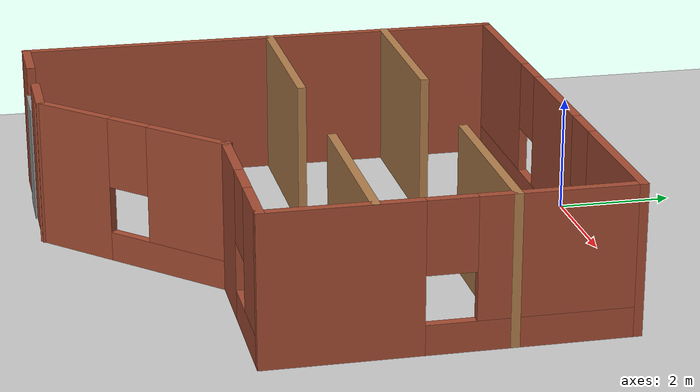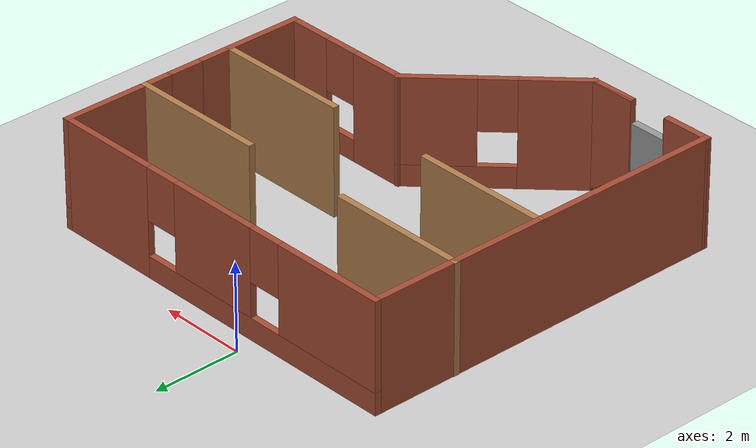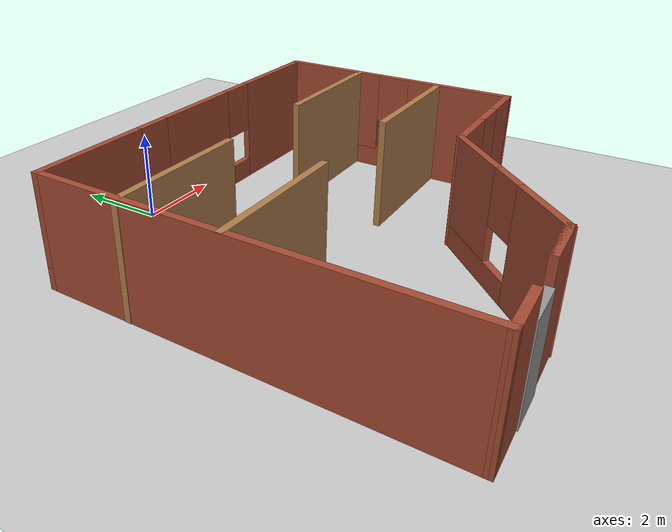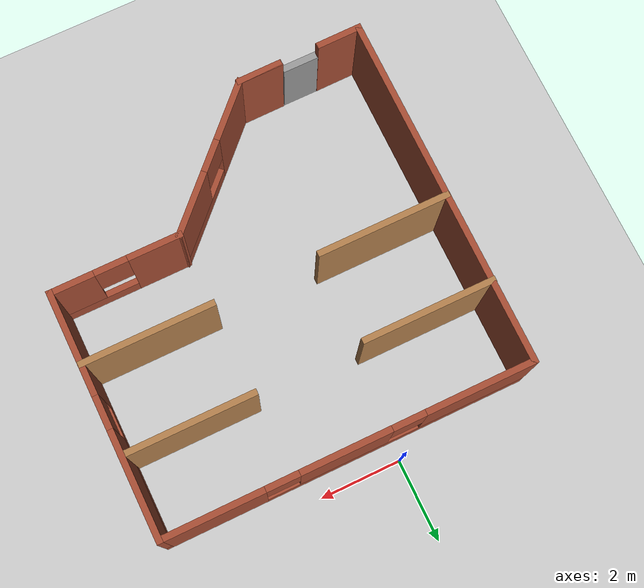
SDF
<sdf version="1.7">
 <world name="default">
  <light name="sun" type="directional">
   <pose>0 0 10 0 -0 0</pose>
   <diffuse>0.8 0.8 0.8 1</diffuse>
   <specular>0.2 0.2 0.2 1</specular>
   <attenuation>
    <range>1000</range>
    <constant>0.9</constant>
    <linear>0.01</linear>
    <quadratic>0.001</quadratic>
   </attenuation>
   <direction>-0.5 0.1 -0.9</direction>
   <spot><inner_angle>0</inner_angle><outer_angle>0</outer_angle><falloff>0</falloff></spot>
  </light>
  <model name="ground_plane">
   <static>1</static>
   <link name="link">
    <collision name="collision">
     <geometry><plane><normal>0 0 1</normal><size>100 100</size></plane></geometry>
     <surface>
      <contact><collide_bitmask>65535</collide_bitmask></contact>
      <friction><ode><mu>100</mu><mu2>50</mu2></ode></friction>
     </surface>
    </collision>
    <visual name="visual">
     <cast_shadows>0</cast_shadows>
     <geometry><plane><normal>0 0 1</normal><size>100 100</size></plane></geometry>
     <material>
      <script><uri>file://media/materials/scripts/gazebo.material</uri><name>Gazebo/Grey</name></script>
     </material>
    </visual>
   </link>
  </model>
  <gravity>0 0 -9.8</gravity>
  <magnetic_field>6e-06 2.3e-05 -4.2e-05</magnetic_field>
  <atmosphere type="adiabatic"/>
  <physics type="ode">
   <max_step_size>0.001</max_step_size>
   <real_time_factor>1</real_time_factor>
   <real_time_update_rate>1000</real_time_update_rate>
  </physics>
  <scene><ambient>0.4 0.4 0.4 1</ambient><background>0.7 0.7 0.7 1</background><shadows>1</shadows></scene>
  <audio><device>default</device></audio>
  <spherical_coordinates>
   <surface_model>EARTH_WGS84</surface_model>
   <latitude_deg>0</latitude_deg>
   <longitude_deg>0</longitude_deg>
   <elevation>0</elevation>
   <heading_deg>0</heading_deg>
  </spherical_coordinates>
  <model name="BuildingSketch1">
   <pose>1.12242 -4.60803 0 0 -0 0</pose>
   <link name="Wall_0">
    <pose>-0.031241 -3.14079 0 0 -0 0.785398</pose>
    <visual name="Wall_0_Visual_0">
     <pose>-1.21498 0 1.25 0 -0 0</pose>
     <geometry><box><size>1.57005 0.15 2.5</size></box></geometry>
     <material>
      <script><uri>file://media/materials/scripts/gazebo.material</uri><name>Gazebo/Bricks</name></script>
      <ambient>1 1 1 1</ambient>
     </material>
     <meta><layer>0</layer></meta>
    </visual>
    <collision name="Wall_0_Collision_0">
     <geometry><box><size>1.57005 0.15 2.5</size></box></geometry>
     <pose>-1.21498 0 1.25 0 -0 0</pose>
    </collision>
    <visual name="Wall_0_Visual_1">
     <pose>0.785023 0 0.25 0 -0 0</pose>
     <geometry><box><size>2.42995 0.15 0.5</size></box></geometry>
     <material>
      <script><uri>file://media/materials/scripts/gazebo.material</uri><name>Gazebo/Bricks</name></script>
      <ambient>1 1 1 1</ambient>
     </material>
     <meta><layer>0</layer></meta>
    </visual>
    <collision name="Wall_0_Collision_1">
     <geometry><box><size>2.42995 0.15 0.5</size></box></geometry>
     <pose>0.785023 0 0.25 0 -0 0</pose>
    </collision>
    <visual name="Wall_0_Visual_2">
     <pose>1.18502 0 1.5 0 -0 0</pose>
     <geometry><box><size>1.62995 0.15 2</size></box></geometry>
     <material>
      <script><uri>file://media/materials/scripts/gazebo.material</uri><name>Gazebo/Bricks</name></script>
      <ambient>1 1 1 1</ambient>
     </material>
     <meta><layer>0</layer></meta>
    </visual>
    <collision name="Wall_0_Collision_2">
     <geometry><box><size>1.62995 0.15 2</size></box></geometry>
     <pose>1.18502 0 1.5 0 -0 0</pose>
    </collision>
    <visual name="Wall_0_Visual_3">
     <pose>-0.029954 0 1.9 0 -0 0</pose>
     <geometry><box><size>0.8 0.15 1.2</size></box></geometry>
     <material>
      <script><uri>file://media/materials/scripts/gazebo.material</uri><name>Gazebo/Bricks</name></script>
      <ambient>1 1 1 1</ambient>
     </material>
     <meta><layer>0</layer></meta>
    </visual>
    <collision name="Wall_0_Collision_3">
     <geometry><box><size>0.8 0.15 1.2</size></box></geometry>
     <pose>-0.029954 0 1.9 0 -0 0</pose>
    </collision>
   </link>
   <link name="Wall_1">
    <pose>2.87994 -1.77961 0 0 -0 0</pose>
    <visual name="Wall_1_Visual_0">
     <pose>-0.958681 0 1.25 0 -0 0</pose>
     <geometry><box><size>1.33264 0.15 2.5</size></box></geometry>
     <material>
      <script><uri>file://media/materials/scripts/gazebo.material</uri><name>Gazebo/Bricks</name></script>
      <ambient>1 1 1 1</ambient>
     </material>
     <meta><layer>0</layer></meta>
    </visual>
    <collision name="Wall_1_Collision_0">
     <geometry><box><size>1.33264 0.15 2.5</size></box></geometry>
     <pose>-0.958681 0 1.25 0 -0 0</pose>
    </collision>
    <visual name="Wall_1_Visual_1">
     <pose>0.666319 0 0.25 0 -0 0</pose>
     <geometry><box><size>1.91736 0.15 0.5</size></box></geometry>
     <material>
      <script><uri>file://media/materials/scripts/gazebo.material</uri><name>Gazebo/Bricks</name></script>
      <ambient>1 1 1 1</ambient>
     </material>
     <meta><layer>0</layer></meta>
    </visual>
    <collision name="Wall_1_Collision_1">
     <geometry><box><size>1.91736 0.15 0.5</size></box></geometry>
     <pose>0.666319 0 0.25 0 -0 0</pose>
    </collision>
    <visual name="Wall_1_Visual_2">
     <pose>1.06632 0 1.5 0 -0 0</pose>
     <geometry><box><size>1.11736 0.15 2</size></box></geometry>
     <material>
      <script><uri>file://media/materials/scripts/gazebo.material</uri><name>Gazebo/Bricks</name></script>
      <ambient>1 1 1 1</ambient>
     </material>
     <meta><layer>0</layer></meta>
    </visual>
    <collision name="Wall_1_Collision_2">
     <geometry><box><size>1.11736 0.15 2</size></box></geometry>
     <pose>1.06632 0 1.5 0 -0 0</pose>
    </collision>
    <visual name="Wall_1_Visual_3">
     <pose>0.107639 0 1.9 0 -0 0</pose>
     <geometry><box><size>0.8 0.15 1.2</size></box></geometry>
     <material>
      <script><uri>file://media/materials/scripts/gazebo.material</uri><name>Gazebo/Bricks</name></script>
      <ambient>1 1 1 1</ambient>
     </material>
     <meta><layer>0</layer></meta>
    </visual>
    <collision name="Wall_1_Collision_3">
     <geometry><box><size>0.8 0.15 1.2</size></box></geometry>
     <pose>0.107639 0 1.9 0 -0 0</pose>
    </collision>
   </link>
   <link name="Wall_12">
    <collision name="Wall_12_Collision">
     <geometry><box><size>3.25 0.15 2.5</size></box></geometry>
     <pose>0 0 1.25 0 -0 0</pose>
    </collision>
    <visual name="Wall_12_Visual">
     <pose>0 0 1.25 0 -0 0</pose>
     <geometry><box><size>3.25 0.15 2.5</size></box></geometry>
     <material>
      <script><uri>file://media/materials/scripts/gazebo.material</uri><name>Gazebo/Wood</name></script>
      <ambient>1 1 1 1</ambient>
     </material>
     <meta><layer>0</layer></meta>
    </visual>
    <pose>-2.8809 2.09995 0 0 -0 0</pose>
   </link>
   <link name="Wall_15">
    <collision name="Wall_15_Collision">
     <geometry><box><size>3.25 0.15 2.5</size></box></geometry>
     <pose>0 0 1.25 0 -0 0</pose>
    </collision>
    <visual name="Wall_15_Visual">
     <pose>0 0 1.25 0 -0 0</pose>
     <geometry><box><size>3.25 0.15 2.5</size></box></geometry>
     <material>
      <script><uri>file://media/materials/scripts/gazebo.material</uri><name>Gazebo/Wood</name></script>
      <ambient>1 1 1 1</ambient>
     </material>
     <meta><layer>0</layer></meta>
    </visual>
    <pose>-2.85842 -0.070209 0 0 -0 0</pose>
   </link>
   <link name="Wall_2">
    <pose>4.42994 1.14539 0 0 -0 1.5708</pose>
    <visual name="Wall_2_Visual_0">
     <pose>-1.71868 0 1.25 0 -0 0</pose>
     <geometry><box><size>2.56264 0.15 2.5</size></box></geometry>
     <material>
      <script><uri>file://media/materials/scripts/gazebo.material</uri><name>Gazebo/Bricks</name></script>
      <ambient>1 1 1 1</ambient>
     </material>
     <meta><layer>0</layer></meta>
    </visual>
    <collision name="Wall_2_Collision_0">
     <geometry><box><size>2.56264 0.15 2.5</size></box></geometry>
     <pose>-1.71868 0 1.25 0 -0 0</pose>
    </collision>
    <visual name="Wall_2_Visual_1">
     <pose>1.28132 0 0.25 0 -0 0</pose>
     <geometry><box><size>3.43736 0.15 0.5</size></box></geometry>
     <material>
      <script><uri>file://media/materials/scripts/gazebo.material</uri><name>Gazebo/Bricks</name></script>
      <ambient>1 1 1 1</ambient>
     </material>
     <meta><layer>0</layer></meta>
    </visual>
    <collision name="Wall_2_Collision_1">
     <geometry><box><size>3.43736 0.15 0.5</size></box></geometry>
     <pose>1.28132 0 0.25 0 -0 0</pose>
    </collision>
    <visual name="Wall_2_Visual_2">
     <pose>1.68132 0 1.5 0 -0 0</pose>
     <geometry><box><size>2.63736 0.15 2</size></box></geometry>
     <material>
      <script><uri>file://media/materials/scripts/gazebo.material</uri><name>Gazebo/Bricks</name></script>
      <ambient>1 1 1 1</ambient>
     </material>
     <meta><layer>0</layer></meta>
    </visual>
    <collision name="Wall_2_Collision_2">
     <geometry><box><size>2.63736 0.15 2</size></box></geometry>
     <pose>1.68132 0 1.5 0 -0 0</pose>
    </collision>
    <visual name="Wall_2_Visual_3">
     <pose>-0.037361 0 1.9 0 -0 0</pose>
     <geometry><box><size>0.8 0.15 1.2</size></box></geometry>
     <material>
      <script><uri>file://media/materials/scripts/gazebo.material</uri><name>Gazebo/Bricks</name></script>
      <ambient>1 1 1 1</ambient>
     </material>
     <meta><layer>0</layer></meta>
    </visual>
    <collision name="Wall_2_Collision_3">
     <geometry><box><size>0.8 0.15 1.2</size></box></geometry>
     <pose>-0.037361 0 1.9 0 -0 0</pose>
    </collision>
   </link>
   <link name="Wall_3">
    <pose>0.004939 4.07039 0 0 -0 3.14159</pose>
    <visual name="Wall_3_Visual_0">
     <pose>-3.23988 0 1.25 0 -0 0</pose>
     <geometry><box><size>2.52024 0.15 2.5</size></box></geometry>
     <material>
      <script><uri>file://media/materials/scripts/gazebo.material</uri><name>Gazebo/Bricks</name></script>
      <ambient>1 1 1 1</ambient>
     </material>
     <meta><layer>0</layer></meta>
    </visual>
    <collision name="Wall_3_Collision_0">
     <geometry><box><size>2.52024 0.15 2.5</size></box></geometry>
     <pose>-3.23988 0 1.25 0 -0 0</pose>
    </collision>
    <visual name="Wall_3_Visual_1">
     <pose>1.26012 0 0.25 0 -0 0</pose>
     <geometry><box><size>6.47976 0.15 0.5</size></box></geometry>
     <material>
      <script><uri>file://media/materials/scripts/gazebo.material</uri><name>Gazebo/Bricks</name></script>
      <ambient>1 1 1 1</ambient>
     </material>
     <meta><layer>0</layer></meta>
    </visual>
    <collision name="Wall_3_Collision_1">
     <geometry><box><size>6.47976 0.15 0.5</size></box></geometry>
     <pose>1.26012 0 0.25 0 -0 0</pose>
    </collision>
    <visual name="Wall_3_Visual_2">
     <pose>-0.085339 0 1.5 0 -0 0</pose>
     <geometry><box><size>2.18885 0.15 2</size></box></geometry>
     <material>
      <script><uri>file://media/materials/scripts/gazebo.material</uri><name>Gazebo/Bricks</name></script>
      <ambient>1 1 1 1</ambient>
     </material>
     <meta><layer>0</layer></meta>
    </visual>
    <collision name="Wall_3_Collision_2">
     <geometry><box><size>2.18885 0.15 2</size></box></geometry>
     <pose>-0.085339 0 1.5 0 -0 0</pose>
    </collision>
    <visual name="Wall_3_Visual_3">
     <pose>3.15454 0 1.5 0 -0 0</pose>
     <geometry><box><size>2.69091 0.15 2</size></box></geometry>
     <material>
      <script><uri>file://media/materials/scripts/gazebo.material</uri><name>Gazebo/Bricks</name></script>
      <ambient>1 1 1 1</ambient>
     </material>
     <meta><layer>0</layer></meta>
    </visual>
    <collision name="Wall_3_Collision_3">
     <geometry><box><size>2.69091 0.15 2</size></box></geometry>
     <pose>3.15454 0 1.5 0 -0 0</pose>
    </collision>
    <visual name="Wall_3_Visual_4">
     <pose>-1.57976 0 1.9 0 -0 0</pose>
     <geometry><box><size>0.8 0.15 1.2</size></box></geometry>
     <material>
      <script><uri>file://media/materials/scripts/gazebo.material</uri><name>Gazebo/Bricks</name></script>
      <ambient>1 1 1 1</ambient>
     </material>
     <meta><layer>0</layer></meta>
    </visual>
    <collision name="Wall_3_Collision_4">
     <geometry><box><size>0.8 0.15 1.2</size></box></geometry>
     <pose>-1.57976 0 1.9 0 -0 0</pose>
    </collision>
    <visual name="Wall_3_Visual_5">
     <pose>1.40909 0 1.9 0 -0 0</pose>
     <geometry><box><size>0.8 0.15 1.2</size></box></geometry>
     <material>
      <script><uri>file://media/materials/scripts/gazebo.material</uri><name>Gazebo/Bricks</name></script>
      <ambient>1 1 1 1</ambient>
     </material>
     <meta><layer>0</layer></meta>
    </visual>
    <collision name="Wall_3_Collision_5">
     <geometry><box><size>0.8 0.15 1.2</size></box></geometry>
     <pose>1.40909 0 1.9 0 -0 0</pose>
    </collision>
   </link>
   <link name="Wall_4">
    <collision name="Wall_4_Collision">
     <geometry><box><size>8.75 0.15 2.5</size></box></geometry>
     <pose>0 0 1.25 0 -0 0</pose>
    </collision>
    <visual name="Wall_4_Visual">
     <pose>0 0 1.25 0 -0 0</pose>
     <geometry><box><size>8.75 0.15 2.5</size></box></geometry>
     <material>
      <script><uri>file://media/materials/scripts/gazebo.material</uri><name>Gazebo/Bricks</name></script>
      <ambient>1 1 1 1</ambient>
     </material>
     <meta><layer>0</layer></meta>
    </visual>
    <pose>-4.42006 -0.229606 0 0 -0 -1.5708</pose>
   </link>
   <link name="Wall_5">
    <pose>-2.90624 -4.51579 0 0 -0 0.009129</pose>
    <visual name="Wall_5_Visual_0">
     <pose>-1.02233 0 1.25 0 -0 0</pose>
     <geometry><box><size>1.13311 0.15 2.5</size></box></geometry>
     <material>
      <script><uri>file://media/materials/scripts/gazebo.material</uri><name>Gazebo/Bricks</name></script>
      <ambient>1 1 1 1</ambient>
     </material>
     <meta><layer>0</layer></meta>
    </visual>
    <collision name="Wall_5_Collision_0">
     <geometry><box><size>1.13311 0.15 2.5</size></box></geometry>
     <pose>-1.02233 0 1.25 0 -0 0</pose>
    </collision>
    <visual name="Wall_5_Visual_1">
     <pose>1.01656 0 1.25 0 -0 0</pose>
     <geometry><box><size>1.14465 0.15 2.5</size></box></geometry>
     <material>
      <script><uri>file://media/materials/scripts/gazebo.material</uri><name>Gazebo/Bricks</name></script>
      <ambient>1 1 1 1</ambient>
     </material>
     <meta><layer>0</layer></meta>
    </visual>
    <collision name="Wall_5_Collision_1">
     <geometry><box><size>1.14465 0.15 2.5</size></box></geometry>
     <pose>1.01656 0 1.25 0 -0 0</pose>
    </collision>
    <visual name="Wall_5_Visual_2">
     <pose>1.02151 0 1.25 0 -0 0</pose>
     <geometry><box><size>1.13475 0.15 2.5</size></box></geometry>
     <material>
      <script><uri>file://media/materials/scripts/gazebo.material</uri><name>Gazebo/Bricks</name></script>
      <ambient>1 1 1 1</ambient>
     </material>
     <meta><layer>0</layer></meta>
    </visual>
    <collision name="Wall_5_Collision_2">
     <geometry><box><size>1.13475 0.15 2.5</size></box></geometry>
     <pose>1.02151 0 1.25 0 -0 0</pose>
    </collision>
    <visual name="Wall_5_Visual_3">
     <pose>-0.450822 0 2.25 0 -0 0</pose>
     <geometry><box><size>0.009901 0.15 0.5</size></box></geometry>
     <material>
      <script><uri>file://media/materials/scripts/gazebo.material</uri><name>Gazebo/Bricks</name></script>
      <ambient>1 1 1 1</ambient>
     </material>
     <meta><layer>0</layer></meta>
    </visual>
    <collision name="Wall_5_Collision_3">
     <geometry><box><size>0.009901 0.15 0.5</size></box></geometry>
     <pose>-0.450822 0 2.25 0 -0 0</pose>
    </collision>
   </link>
   <link name="Wall_7">
    <collision name="Wall_7_Collision">
     <geometry><box><size>3.25 0.15 2.5</size></box></geometry>
     <pose>0 0 1.25 0 -0 0</pose>
    </collision>
    <visual name="Wall_7_Visual">
     <pose>0 0 1.25 0 -0 0</pose>
     <geometry><box><size>3.25 0.15 2.5</size></box></geometry>
     <material>
      <script><uri>file://media/materials/scripts/gazebo.material</uri><name>Gazebo/Wood</name></script>
      <ambient>1 1 1 1</ambient>
     </material>
     <meta><layer>0</layer></meta>
    </visual>
    <pose>2.87334 -0.055086 0 0 -0 3.14159</pose>
   </link>
   <link name="Wall_9">
    <collision name="Wall_9_Collision">
     <geometry><box><size>3.25 0.15 2.5</size></box></geometry>
     <pose>0 0 1.25 0 -0 0</pose>
    </collision>
    <visual name="Wall_9_Visual">
     <pose>0 0 1.25 0 -0 0</pose>
     <geometry><box><size>3.25 0.15 2.5</size></box></geometry>
     <material>
      <script><uri>file://media/materials/scripts/gazebo.material</uri><name>Gazebo/Wood</name></script>
      <ambient>1 1 1 1</ambient>
     </material>
     <meta><layer>0</layer></meta>
    </visual>
    <pose>2.8809 2.11505 0 0 -0 3.14159</pose>
   </link>
   <static>1</static>
  </model>
  <model name="door1">
   <link name="Door_2">
    <collision name="Door_2_Collision">
     <geometry><box><size>0.9 0.17 2</size></box></geometry>
     <pose>0 0 1 0 -0 0</pose>
    </collision>
    <visual name="Door_2_Visual">
     <pose>0 0 1 0 -0 0</pose>
     <geometry><box><size>0.9 0.17 2</size></box></geometry>
     <material>
      <script><uri>file://media/materials/scripts/gazebo.material</uri><name>Gazebo/Grey</name></script>
     </material>
    </visual>
    <pose>-1.81562 -9.14263 0 0 -0 0</pose>
   </link>
   <static>1</static>
  </model>
 </world>
</sdf>
